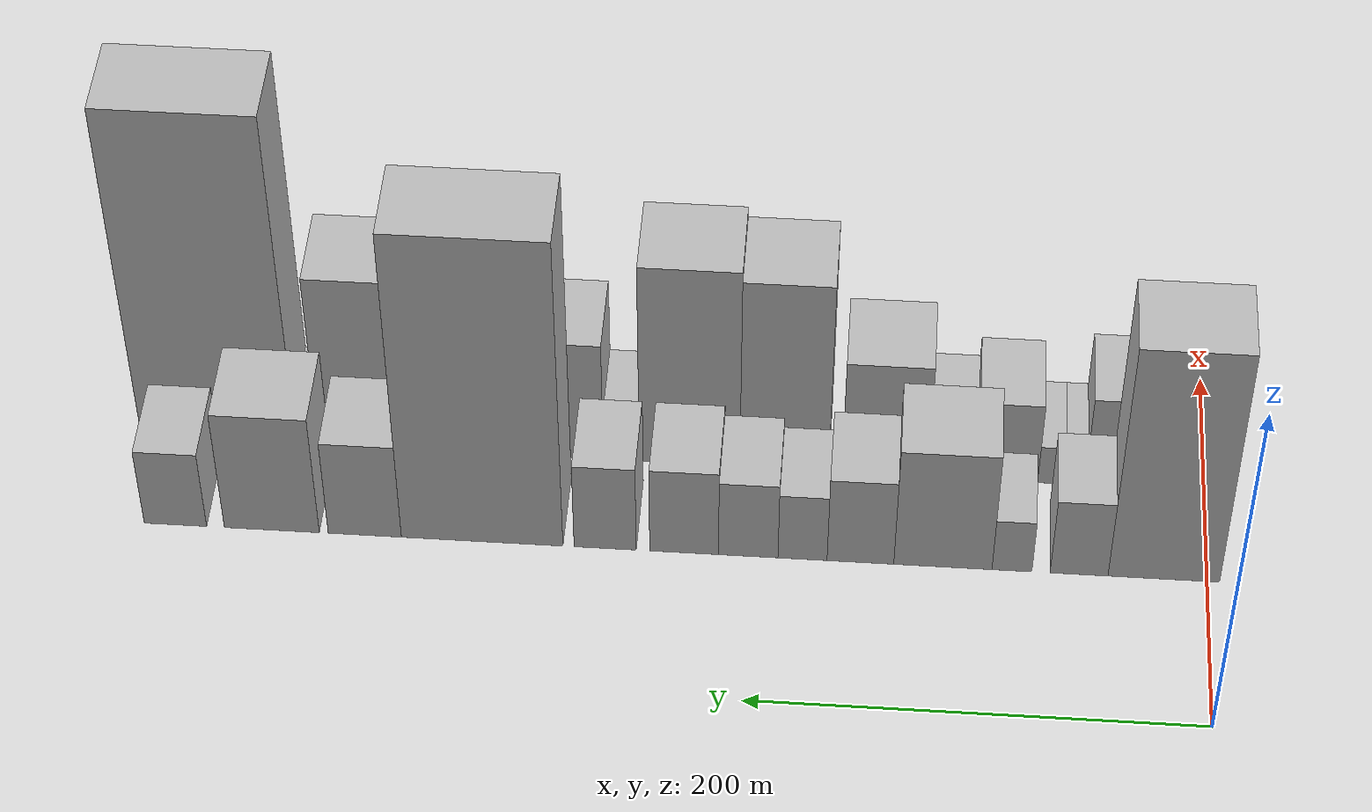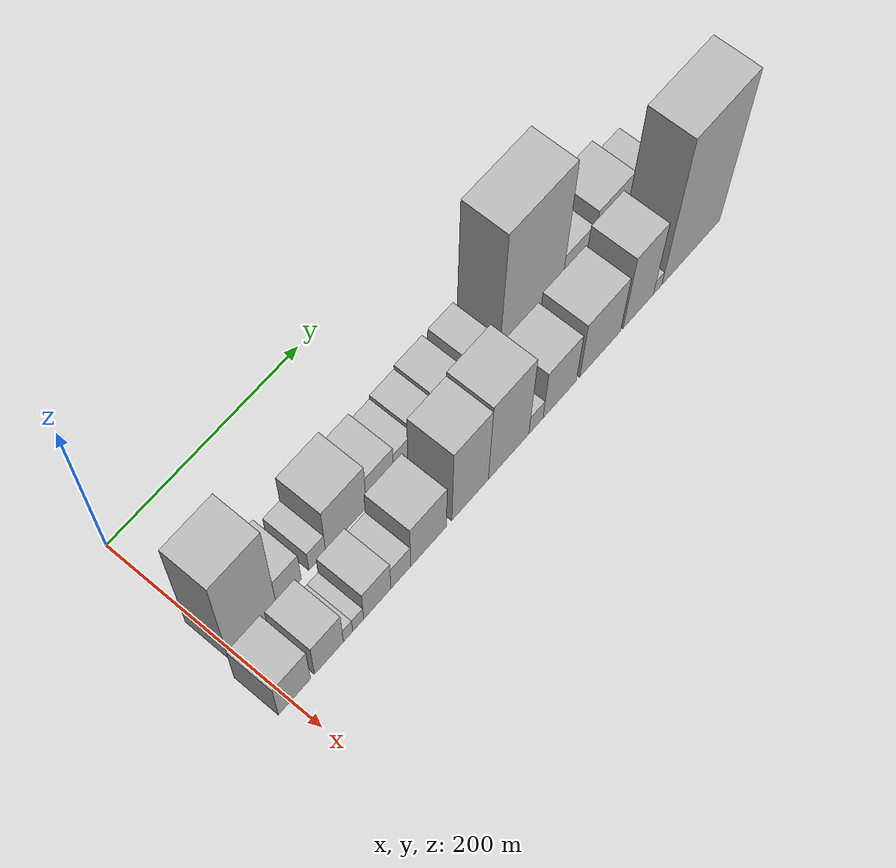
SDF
<sdf version="1.6">
 <world name="default">
  <model name="building_13">
   <static>1</static>
   <pose>100.0000 19.1538 0 0.000000 0.000000 0.000000</pose>
   <link name="link">
    <pose>0 0 73.50 0 0 0</pose>
    <collision name="collision"><geometry><box><size>40.0000 48.9134 147.0000</size></box></geometry></collision>
    <visual name="visual">
     <cast_shadows>0</cast_shadows>
     <geometry><box><size>40.0000 48.9134 147.0000</size></box></geometry>
     <material>
      <script>
       <uri>model://HANNAS_wall/materials/scripts</uri>
       <uri>model://HANNAS_wall/materials/textures</uri>
       <name>vrc/HANNAS_wall</name>
      </script>
     </material>
    </visual>
   </link>
  </model>
  <model name="building_14">
   <static>1</static>
   <pose>100.0000 56.3110 0 0.000000 0.000000 0.000000</pose>
   <link name="link">
    <pose>0 0 24.00 0 0 0</pose>
    <collision name="collision"><geometry><box><size>40.0000 25.4011 48.0000</size></box></geometry></collision>
    <visual name="visual">
     <cast_shadows>0</cast_shadows>
     <geometry><box><size>40.0000 25.4011 48.0000</size></box></geometry>
     <material>
      <script>
       <uri>model://HANNAS_wall/materials/scripts</uri>
       <uri>model://HANNAS_wall/materials/textures</uri>
       <name>vrc/HANNAS_wall</name>
      </script>
     </material>
    </visual>
   </link>
  </model>
  <model name="building_15">
   <static>1</static>
   <pose>100.0000 85.7866 0 0.000000 0.000000 0.000000</pose>
   <link name="link">
    <pose>0 0 16.50 0 0 0</pose>
    <collision name="collision"><geometry><box><size>40.0000 17.5499 33.0000</size></box></geometry></collision>
    <visual name="visual">
     <cast_shadows>0</cast_shadows>
     <geometry><box><size>40.0000 17.5499 33.0000</size></box></geometry>
     <material>
      <script>
       <uri>model://HANNAS_wall/materials/scripts</uri>
       <uri>model://HANNAS_wall/materials/textures</uri>
       <name>vrc/HANNAS_wall</name>
      </script>
     </material>
    </visual>
   </link>
  </model>
  <model name="building_16">
   <static>1</static>
   <pose>100.0000 116.1992 0 0.000000 0.000000 0.000000</pose>
   <link name="link">
    <pose>0 0 37.50 0 0 0</pose>
    <collision name="collision"><geometry><box><size>40.0000 43.2753 75.0000</size></box></geometry></collision>
    <visual name="visual">
     <cast_shadows>0</cast_shadows>
     <geometry><box><size>40.0000 43.2753 75.0000</size></box></geometry>
     <material>
      <script>
       <uri>model://HANNAS_wall/materials/scripts</uri>
       <uri>model://HANNAS_wall/materials/textures</uri>
       <name>vrc/HANNAS_wall</name>
      </script>
     </material>
    </visual>
   </link>
  </model>
  <model name="building_17">
   <static>1</static>
   <pose>100.0000 152.5779 0 0.000000 0.000000 0.000000</pose>
   <link name="link">
    <pose>0 0 27.00 0 0 0</pose>
    <collision name="collision"><geometry><box><size>40.0000 29.4822 54.0000</size></box></geometry></collision>
    <visual name="visual">
     <cast_shadows>0</cast_shadows>
     <geometry><box><size>40.0000 29.4822 54.0000</size></box></geometry>
     <material>
      <script>
       <uri>model://HANNAS_wall/materials/scripts</uri>
       <uri>model://HANNAS_wall/materials/textures</uri>
       <name>vrc/HANNAS_wall</name>
      </script>
     </material>
    </visual>
   </link>
  </model>
  <model name="building_18">
   <static>1</static>
   <pose>100.0000 178.1741 0 0.000000 0.000000 0.000000</pose>
   <link name="link">
    <pose>0 0 21.00 0 0 0</pose>
    <collision name="collision"><geometry><box><size>40.0000 21.7101 42.0000</size></box></geometry></collision>
    <visual name="visual">
     <cast_shadows>0</cast_shadows>
     <geometry><box><size>40.0000 21.7101 42.0000</size></box></geometry>
     <material>
      <script>
       <uri>model://HANNAS_wall/materials/scripts</uri>
       <uri>model://HANNAS_wall/materials/textures</uri>
       <name>vrc/HANNAS_wall</name>
      </script>
     </material>
    </visual>
   </link>
  </model>
  <model name="building_19">
   <static>1</static>
   <pose>100.0000 202.1980 0 0.000000 0.000000 0.000000</pose>
   <link name="link">
    <pose>0 0 24.00 0 0 0</pose>
    <collision name="collision"><geometry><box><size>40.0000 26.3378 48.0000</size></box></geometry></collision>
    <visual name="visual">
     <cast_shadows>0</cast_shadows>
     <geometry><box><size>40.0000 26.3378 48.0000</size></box></geometry>
     <material>
      <script>
       <uri>model://HANNAS_wall/materials/scripts</uri>
       <uri>model://HANNAS_wall/materials/textures</uri>
       <name>vrc/HANNAS_wall</name>
      </script>
     </material>
    </visual>
   </link>
  </model>
  <model name="building_20">
   <static>1</static>
   <pose>100.0000 230.6252 0 0.000000 0.000000 0.000000</pose>
   <link name="link">
    <pose>0 0 27.00 0 0 0</pose>
    <collision name="collision"><geometry><box><size>40.0000 30.5164 54.0000</size></box></geometry></collision>
    <visual name="visual">
     <cast_shadows>0</cast_shadows>
     <geometry><box><size>40.0000 30.5164 54.0000</size></box></geometry>
     <material>
      <script>
       <uri>model://HANNAS_wall/materials/scripts</uri>
       <uri>model://HANNAS_wall/materials/textures</uri>
       <name>vrc/HANNAS_wall</name>
      </script>
     </material>
    </visual>
   </link>
  </model>
  <model name="building_21">
   <static>1</static>
   <pose>100.0000 265.6750 0 0.000000 0.000000 0.000000</pose>
   <link name="link">
    <pose>0 0 27.00 0 0 0</pose>
    <collision name="collision"><geometry><box><size>40.0000 27.5833 54.0000</size></box></geometry></collision>
    <visual name="visual">
     <cast_shadows>0</cast_shadows>
     <geometry><box><size>40.0000 27.5833 54.0000</size></box></geometry>
     <material>
      <script>
       <uri>model://HANNAS_wall/materials/scripts</uri>
       <uri>model://HANNAS_wall/materials/textures</uri>
       <name>vrc/HANNAS_wall</name>
      </script>
     </material>
    </visual>
   </link>
  </model>
  <model name="building_22">
   <static>1</static>
   <pose>100.0000 320.4977 0 0.000000 0.000000 0.000000</pose>
   <link name="link">
    <pose>0 0 96.00 0 0 0</pose>
    <collision name="collision"><geometry><box><size>40.0000 72.0619 192.0000</size></box></geometry></collision>
    <visual name="visual">
     <cast_shadows>0</cast_shadows>
     <geometry><box><size>40.0000 72.0619 192.0000</size></box></geometry>
     <material>
      <script>
       <uri>model://HANNAS_wall/materials/scripts</uri>
       <uri>model://HANNAS_wall/materials/textures</uri>
       <name>vrc/HANNAS_wall</name>
      </script>
     </material>
    </visual>
   </link>
  </model>
  <model name="building_23">
   <static>1</static>
   <pose>100.0000 372.8843 0 0.000000 0.000000 0.000000</pose>
   <link name="link">
    <pose>0 0 30.00 0 0 0</pose>
    <collision name="collision"><geometry><box><size>40.0000 32.7114 60.0000</size></box></geometry></collision>
    <visual name="visual">
     <cast_shadows>0</cast_shadows>
     <geometry><box><size>40.0000 32.7114 60.0000</size></box></geometry>
     <material>
      <script>
       <uri>model://HANNAS_wall/materials/scripts</uri>
       <uri>model://HANNAS_wall/materials/textures</uri>
       <name>vrc/HANNAS_wall</name>
      </script>
     </material>
    </visual>
   </link>
  </model>
  <model name="building_24">
   <static>1</static>
   <pose>100.0000 414.5282 0 0.000000 0.000000 0.000000</pose>
   <link name="link">
    <pose>0 0 37.50 0 0 0</pose>
    <collision name="collision"><geometry><box><size>40.0000 42.5766 75.0000</size></box></geometry></collision>
    <visual name="visual">
     <cast_shadows>0</cast_shadows>
     <geometry><box><size>40.0000 42.5766 75.0000</size></box></geometry>
     <material>
      <script>
       <uri>model://HANNAS_wall/materials/scripts</uri>
       <uri>model://HANNAS_wall/materials/textures</uri>
       <name>vrc/HANNAS_wall</name>
      </script>
     </material>
    </visual>
   </link>
  </model>
  <model name="building_25">
   <static>1</static>
   <pose>100.0000 457.8258 0 0.000000 0.000000 0.000000</pose>
   <link name="link">
    <pose>0 0 24.00 0 0 0</pose>
    <collision name="collision"><geometry><box><size>40.0000 28.0185 48.0000</size></box></geometry></collision>
    <visual name="visual">
     <cast_shadows>0</cast_shadows>
     <geometry><box><size>40.0000 28.0185 48.0000</size></box></geometry>
     <material>
      <script>
       <uri>model://HANNAS_wall/materials/scripts</uri>
       <uri>model://HANNAS_wall/materials/textures</uri>
       <name>vrc/HANNAS_wall</name>
      </script>
     </material>
    </visual>
   </link>
  </model>
  <model name="building_39">
   <static>1</static>
   <pose>152.0000 3.7139 0 0.000000 0.000000 0.000000</pose>
   <link name="link">
    <pose>0 0 30.00 0 0 0</pose>
    <collision name="collision"><geometry><box><size>40.0000 32.6697 60.0000</size></box></geometry></collision>
    <visual name="visual">
     <cast_shadows>0</cast_shadows>
     <geometry><box><size>40.0000 32.6697 60.0000</size></box></geometry>
     <material>
      <script>
       <uri>model://HANNAS_wall/materials/scripts</uri>
       <uri>model://HANNAS_wall/materials/textures</uri>
       <name>vrc/HANNAS_wall</name>
      </script>
     </material>
    </visual>
   </link>
  </model>
  <model name="building_40">
   <static>1</static>
   <pose>152.0000 38.8727 0 0.000000 0.000000 0.000000</pose>
   <link name="link">
    <pose>0 0 28.50 0 0 0</pose>
    <collision name="collision"><geometry><box><size>40.0000 29.6478 57.0000</size></box></geometry></collision>
    <visual name="visual">
     <cast_shadows>0</cast_shadows>
     <geometry><box><size>40.0000 29.6478 57.0000</size></box></geometry>
     <material>
      <script>
       <uri>model://HANNAS_wall/materials/scripts</uri>
       <uri>model://HANNAS_wall/materials/textures</uri>
       <name>vrc/HANNAS_wall</name>
      </script>
     </material>
    </visual>
   </link>
  </model>
  <model name="building_41">
   <static>1</static>
   <pose>152.0000 58.5143 0 0.000000 0.000000 0.000000</pose>
   <link name="link">
    <pose>0 0 12.00 0 0 0</pose>
    <collision name="collision"><geometry><box><size>40.0000 9.6354 24.0000</size></box></geometry></collision>
    <visual name="visual">
     <cast_shadows>0</cast_shadows>
     <geometry><box><size>40.0000 9.6354 24.0000</size></box></geometry>
     <material>
      <script>
       <uri>model://HANNAS_wall/materials/scripts</uri>
       <uri>model://HANNAS_wall/materials/textures</uri>
       <name>vrc/HANNAS_wall</name>
      </script>
     </material>
    </visual>
   </link>
  </model>
  <model name="building_42">
   <static>1</static>
   <pose>152.0000 69.0441 0 0.000000 0.000000 0.000000</pose>
   <link name="link">
    <pose>0 0 12.00 0 0 0</pose>
    <collision name="collision"><geometry><box><size>40.0000 11.4242 24.0000</size></box></geometry></collision>
    <visual name="visual">
     <cast_shadows>0</cast_shadows>
     <geometry><box><size>40.0000 11.4242 24.0000</size></box></geometry>
     <material>
      <script>
       <uri>model://HANNAS_wall/materials/scripts</uri>
       <uri>model://HANNAS_wall/materials/textures</uri>
       <name>vrc/HANNAS_wall</name>
      </script>
     </material>
    </visual>
   </link>
  </model>
  <model name="building_43">
   <static>1</static>
   <pose>152.0000 89.0532 0 0.000000 0.000000 0.000000</pose>
   <link name="link">
    <pose>0 0 25.50 0 0 0</pose>
    <collision name="collision"><geometry><box><size>40.0000 28.5941 51.0000</size></box></geometry></collision>
    <visual name="visual">
     <cast_shadows>0</cast_shadows>
     <geometry><box><size>40.0000 28.5941 51.0000</size></box></geometry>
     <material>
      <script>
       <uri>model://HANNAS_wall/materials/scripts</uri>
       <uri>model://HANNAS_wall/materials/textures</uri>
       <name>vrc/HANNAS_wall</name>
      </script>
     </material>
    </visual>
   </link>
  </model>
  <model name="building_44">
   <static>1</static>
   <pose>152.0000 113.8425 0 0.000000 0.000000 0.000000</pose>
   <link name="link">
    <pose>0 0 19.50 0 0 0</pose>
    <collision name="collision"><geometry><box><size>40.0000 20.9843 39.0000</size></box></geometry></collision>
    <visual name="visual">
     <cast_shadows>0</cast_shadows>
     <geometry><box><size>40.0000 20.9843 39.0000</size></box></geometry>
     <material>
      <script>
       <uri>model://HANNAS_wall/materials/scripts</uri>
       <uri>model://HANNAS_wall/materials/textures</uri>
       <name>vrc/HANNAS_wall</name>
      </script>
     </material>
    </visual>
   </link>
  </model>
  <model name="building_45">
   <static>1</static>
   <pose>152.0000 143.6163 0 0.000000 0.000000 0.000000</pose>
   <link name="link">
    <pose>0 0 36.00 0 0 0</pose>
    <collision name="collision"><geometry><box><size>40.0000 38.5632 72.0000</size></box></geometry></collision>
    <visual name="visual">
     <cast_shadows>0</cast_shadows>
     <geometry><box><size>40.0000 38.5632 72.0000</size></box></geometry>
     <material>
      <script>
       <uri>model://HANNAS_wall/materials/scripts</uri>
       <uri>model://HANNAS_wall/materials/textures</uri>
       <name>vrc/HANNAS_wall</name>
      </script>
     </material>
    </visual>
   </link>
  </model>
  <model name="building_46">
   <static>1</static>
   <pose>152.0000 189.0044 0 0.000000 0.000000 0.000000</pose>
   <link name="link">
    <pose>0 0 60.00 0 0 0</pose>
    <collision name="collision"><geometry><box><size>40.0000 40.2131 120.0000</size></box></geometry></collision>
    <visual name="visual">
     <cast_shadows>0</cast_shadows>
     <geometry><box><size>40.0000 40.2131 120.0000</size></box></geometry>
     <material>
      <script>
       <uri>model://HANNAS_wall/materials/scripts</uri>
       <uri>model://HANNAS_wall/materials/textures</uri>
       <name>vrc/HANNAS_wall</name>
      </script>
     </material>
    </visual>
   </link>
  </model>
  <model name="building_47">
   <static>1</static>
   <pose>152.0000 231.8665 0 0.000000 0.000000 0.000000</pose>
   <link name="link">
    <pose>0 0 63.00 0 0 0</pose>
    <collision name="collision"><geometry><box><size>40.0000 45.5110 126.0000</size></box></geometry></collision>
    <visual name="visual">
     <cast_shadows>0</cast_shadows>
     <geometry><box><size>40.0000 45.5110 126.0000</size></box></geometry>
     <material>
      <script>
       <uri>model://HANNAS_wall/materials/scripts</uri>
       <uri>model://HANNAS_wall/materials/textures</uri>
       <name>vrc/HANNAS_wall</name>
      </script>
     </material>
    </visual>
   </link>
  </model>
  <model name="building_48">
   <static>1</static>
   <pose>152.0000 262.7739 0 0.000000 0.000000 0.000000</pose>
   <link name="link">
    <pose>0 0 15.00 0 0 0</pose>
    <collision name="collision"><geometry><box><size>40.0000 16.3037 30.0000</size></box></geometry></collision>
    <visual name="visual">
     <cast_shadows>0</cast_shadows>
     <geometry><box><size>40.0000 16.3037 30.0000</size></box></geometry>
     <material>
      <script>
       <uri>model://HANNAS_wall/materials/scripts</uri>
       <uri>model://HANNAS_wall/materials/textures</uri>
       <name>vrc/HANNAS_wall</name>
      </script>
     </material>
    </visual>
   </link>
  </model>
  <model name="building_49">
   <static>1</static>
   <pose>152.0000 290.0811 0 0.000000 0.000000 0.000000</pose>
   <link name="link">
    <pose>0 0 37.50 0 0 0</pose>
    <collision name="collision"><geometry><box><size>40.0000 38.3106 75.0000</size></box></geometry></collision>
    <visual name="visual">
     <cast_shadows>0</cast_shadows>
     <geometry><box><size>40.0000 38.3106 75.0000</size></box></geometry>
     <material>
      <script>
       <uri>model://HANNAS_wall/materials/scripts</uri>
       <uri>model://HANNAS_wall/materials/textures</uri>
       <name>vrc/HANNAS_wall</name>
      </script>
     </material>
    </visual>
   </link>
  </model>
  <model name="building_50">
   <static>1</static>
   <pose>152.0000 337.2323 0 0.000000 0.000000 0.000000</pose>
   <link name="link">
    <pose>0 0 42.00 0 0 0</pose>
    <collision name="collision"><geometry><box><size>40.0000 47.9918 84.0000</size></box></geometry></collision>
    <visual name="visual">
     <cast_shadows>0</cast_shadows>
     <geometry><box><size>40.0000 47.9918 84.0000</size></box></geometry>
     <material>
      <script>
       <uri>model://HANNAS_wall/materials/scripts</uri>
       <uri>model://HANNAS_wall/materials/textures</uri>
       <name>vrc/HANNAS_wall</name>
      </script>
     </material>
    </visual>
   </link>
  </model>
  <model name="building_51">
   <static>1</static>
   <pose>152.0000 382.5155 0 0.000000 0.000000 0.000000</pose>
   <link name="link">
    <pose>0 0 54.00 0 0 0</pose>
    <collision name="collision"><geometry><box><size>40.0000 36.5745 108.0000</size></box></geometry></collision>
    <visual name="visual">
     <cast_shadows>0</cast_shadows>
     <geometry><box><size>40.0000 36.5745 108.0000</size></box></geometry>
     <material>
      <script>
       <uri>model://HANNAS_wall/materials/scripts</uri>
       <uri>model://HANNAS_wall/materials/textures</uri>
       <name>vrc/HANNAS_wall</name>
      </script>
     </material>
    </visual>
   </link>
  </model>
  <model name="building_52">
   <static>1</static>
   <pose>152.0000 405.8879 0 0.000000 0.000000 0.000000</pose>
   <link name="link">
    <pose>0 0 10.50 0 0 0</pose>
    <collision name="collision"><geometry><box><size>40.0000 10.1703 21.0000</size></box></geometry></collision>
    <visual name="visual">
     <cast_shadows>0</cast_shadows>
     <geometry><box><size>40.0000 10.1703 21.0000</size></box></geometry>
     <material>
      <script>
       <uri>model://HANNAS_wall/materials/scripts</uri>
       <uri>model://HANNAS_wall/materials/textures</uri>
       <name>vrc/HANNAS_wall</name>
      </script>
     </material>
    </visual>
   </link>
  </model>
  <model name="building_53">
   <static>1</static>
   <pose>152.0000 446.6959 0 0.000000 0.000000 0.000000</pose>
   <link name="link">
    <pose>0 0 102.00 0 0 0</pose>
    <collision name="collision"><geometry><box><size>40.0000 71.4459 204.0000</size></box></geometry></collision>
    <visual name="visual">
     <cast_shadows>0</cast_shadows>
     <geometry><box><size>40.0000 71.4459 204.0000</size></box></geometry>
     <material>
      <script>
       <uri>model://HANNAS_wall/materials/scripts</uri>
       <uri>model://HANNAS_wall/materials/textures</uri>
       <name>vrc/HANNAS_wall</name>
      </script>
     </material>
    </visual>
   </link>
  </model>
 </world>
</sdf>
